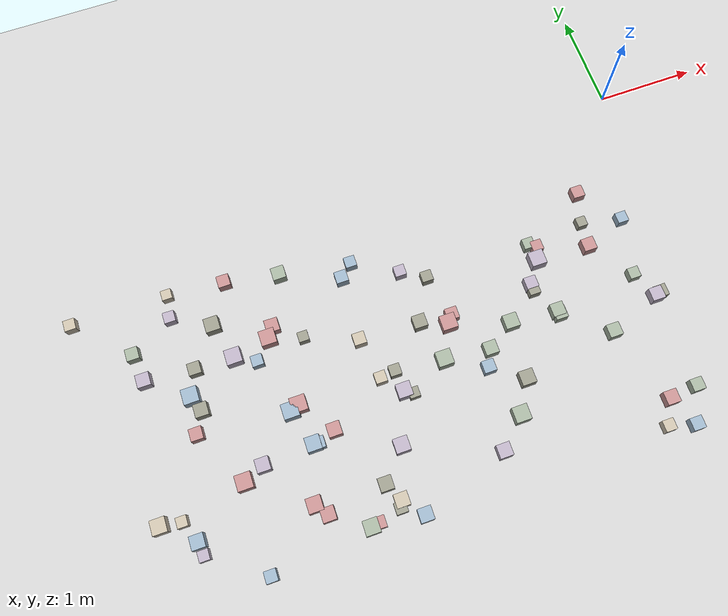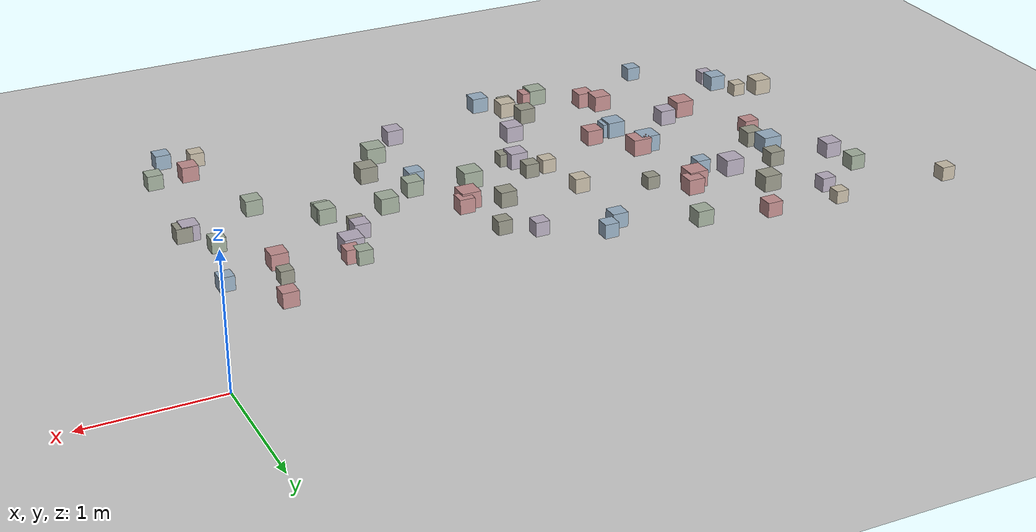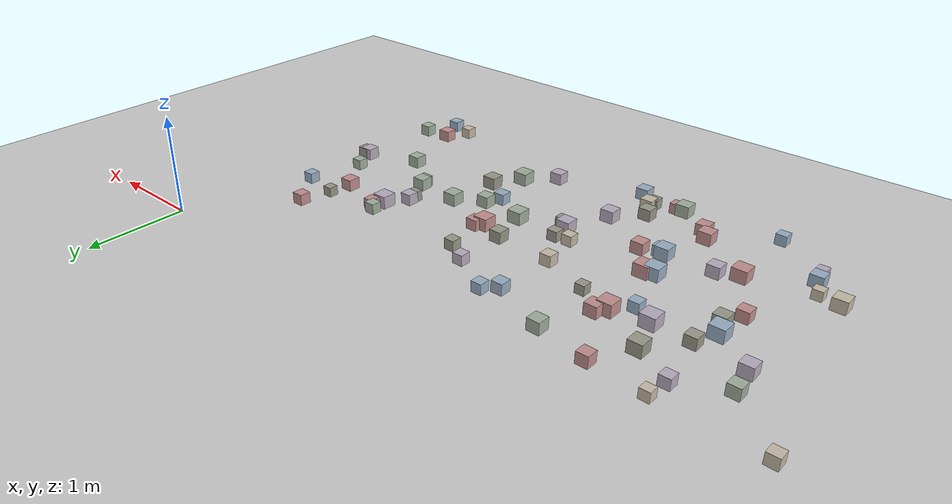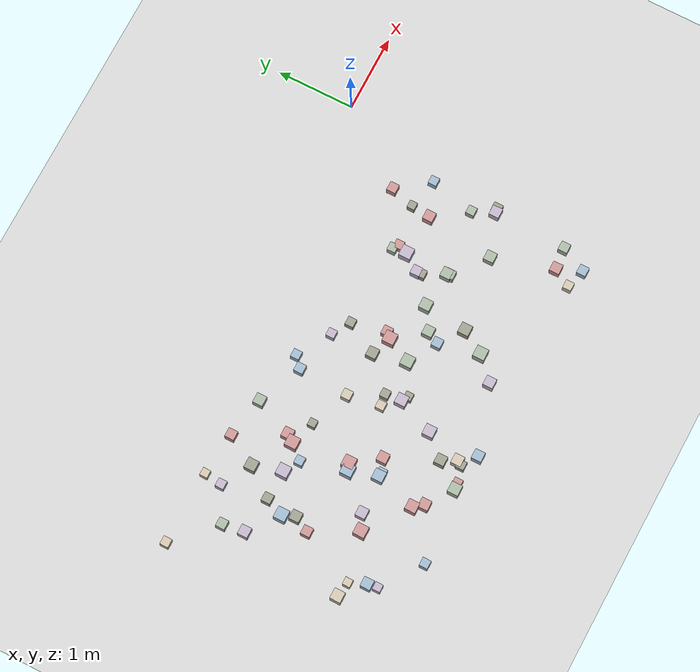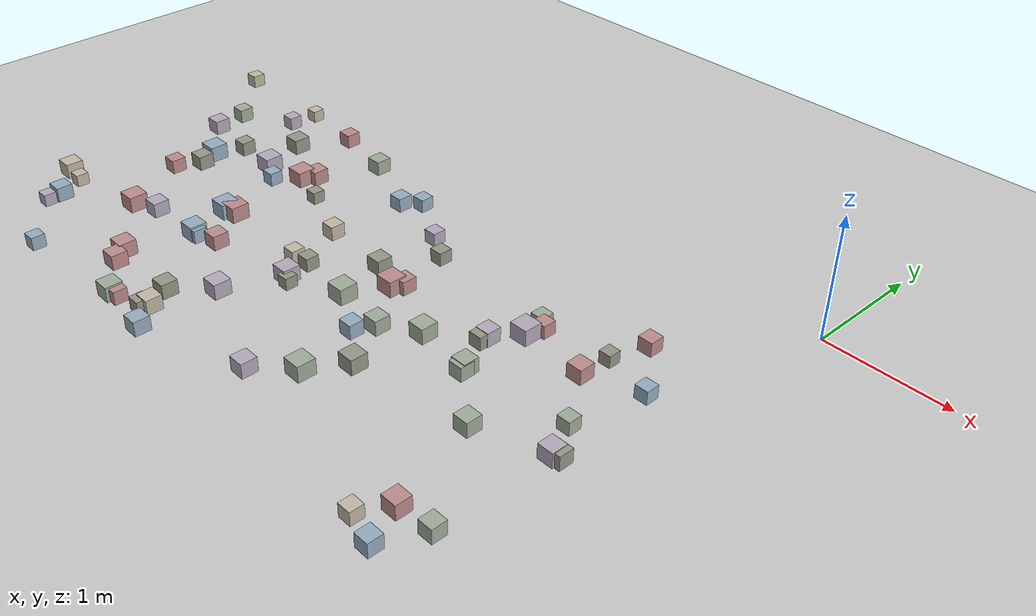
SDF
<sdf version="1.6">
 <world name="small_maze_world">
  <include><uri>model://ground_plane</uri></include>
  <include><uri>model://sun</uri></include>
  <model name="box_7">
   <static>false</static>
   <pose>-1.33 -1.35 0.05 0 0 0</pose>
   <link name="link">
    <inertial>
     <mass>0.2</mass>
     <inertia><ixx>0.001</ixx><iyy>0.001</iyy><izz>0.001</izz><ixy>0</ixy><ixz>0</ixz><iyz>0</iyz></inertia>
    </inertial>
    <collision name="collision"><geometry><box><size>0.11 0.11 0.11</size></box></geometry></collision>
    <visual name="visual">
     <geometry><box><size>0.11 0.11 0.11</size></box></geometry>
     <material><ambient>0.76 0.56 0.56 1</ambient><diffuse>0.76 0.56 0.56 1</diffuse></material>
    </visual>
   </link>
  </model>
  <model name="box_8">
   <static>false</static>
   <pose>-0.42 -2.2 0.05 0 0 0</pose>
   <link name="link">
    <inertial>
     <mass>0.2</mass>
     <inertia><ixx>0.001</ixx><iyy>0.001</iyy><izz>0.001</izz><ixy>0</ixy><ixz>0</ixz><iyz>0</iyz></inertia>
    </inertial>
    <collision name="collision"><geometry><box><size>0.13 0.13 0.13</size></box></geometry></collision>
    <visual name="visual">
     <geometry><box><size>0.13 0.13 0.13</size></box></geometry>
     <material><ambient>0.72 0.68 0.75 1</ambient><diffuse>0.72 0.68 0.75 1</diffuse></material>
    </visual>
   </link>
  </model>
  <model name="box_11">
   <static>false</static>
   <pose>-5.37 -1.1 0.05 0 0 0</pose>
   <link name="link">
    <inertial>
     <mass>0.2</mass>
     <inertia><ixx>0.001</ixx><iyy>0.001</iyy><izz>0.001</izz><ixy>0</ixy><ixz>0</ixz><iyz>0</iyz></inertia>
    </inertial>
    <collision name="collision"><geometry><box><size>0.12 0.12 0.12</size></box></geometry></collision>
    <visual name="visual">
     <geometry><box><size>0.12 0.12 0.12</size></box></geometry>
     <material><ambient>0.64 0.69 0.62 1</ambient><diffuse>0.64 0.69 0.62 1</diffuse></material>
    </visual>
   </link>
  </model>
  <model name="box_35">
   <static>false</static>
   <pose>-4.95 -0.86 0.05 0 0 0</pose>
   <link name="link">
    <inertial>
     <mass>0.2</mass>
     <inertia><ixx>0.001</ixx><iyy>0.001</iyy><izz>0.001</izz><ixy>0</ixy><ixz>0</ixz><iyz>0</iyz></inertia>
    </inertial>
    <collision name="collision"><geometry><box><size>0.11 0.11 0.11</size></box></geometry></collision>
    <visual name="visual">
     <geometry><box><size>0.11 0.11 0.11</size></box></geometry>
     <material><ambient>0.72 0.68 0.75 1</ambient><diffuse>0.72 0.68 0.75 1</diffuse></material>
    </visual>
   </link>
  </model>
  <model name="box_37">
   <static>false</static>
   <pose>-0.72 -0.95 0.05 0 0 0</pose>
   <link name="link">
    <inertial>
     <mass>0.2</mass>
     <inertia><ixx>0.001</ixx><iyy>0.001</iyy><izz>0.001</izz><ixy>0</ixy><ixz>0</ixz><iyz>0</iyz></inertia>
    </inertial>
    <collision name="collision"><geometry><box><size>0.12 0.12 0.12</size></box></geometry></collision>
    <visual name="visual">
     <geometry><box><size>0.12 0.12 0.12</size></box></geometry>
     <material><ambient>0.76 0.56 0.56 1</ambient><diffuse>0.76 0.56 0.56 1</diffuse></material>
    </visual>
   </link>
  </model>
  <model name="box_38">
   <static>false</static>
   <pose>-4.06 -3.11 0.05 0 0 0</pose>
   <link name="link">
    <inertial>
     <mass>0.2</mass>
     <inertia><ixx>0.001</ixx><iyy>0.001</iyy><izz>0.001</izz><ixy>0</ixy><ixz>0</ixz><iyz>0</iyz></inertia>
    </inertial>
    <collision name="collision"><geometry><box><size>0.13 0.13 0.13</size></box></geometry></collision>
    <visual name="visual">
     <geometry><box><size>0.13 0.13 0.13</size></box></geometry>
     <material><ambient>0.76 0.56 0.56 1</ambient><diffuse>0.76 0.56 0.56 1</diffuse></material>
    </visual>
   </link>
  </model>
  <model name="box_39">
   <static>false</static>
   <pose>-4.69 -2.59 0.05 0 0 0</pose>
   <link name="link">
    <inertial>
     <mass>0.2</mass>
     <inertia><ixx>0.001</ixx><iyy>0.001</iyy><izz>0.001</izz><ixy>0</ixy><ixz>0</ixz><iyz>0</iyz></inertia>
    </inertial>
    <collision name="collision"><geometry><box><size>0.15 0.15 0.15</size></box></geometry></collision>
    <visual name="visual">
     <geometry><box><size>0.15 0.15 0.15</size></box></geometry>
     <material><ambient>0.76 0.56 0.56 1</ambient><diffuse>0.76 0.56 0.56 1</diffuse></material>
    </visual>
   </link>
  </model>
  <model name="box_41">
   <static>false</static>
   <pose>-4.11 -1.37 0.05 0 0 0</pose>
   <link name="link">
    <inertial>
     <mass>0.2</mass>
     <inertia><ixx>0.001</ixx><iyy>0.001</iyy><izz>0.001</izz><ixy>0</ixy><ixz>0</ixz><iyz>0</iyz></inertia>
    </inertial>
    <collision name="collision"><geometry><box><size>0.15 0.15 0.15</size></box></geometry></collision>
    <visual name="visual">
     <geometry><box><size>0.15 0.15 0.15</size></box></geometry>
     <material><ambient>0.76 0.56 0.56 1</ambient><diffuse>0.76 0.56 0.56 1</diffuse></material>
    </visual>
   </link>
  </model>
  <model name="box_55">
   <static>false</static>
   <pose>-4.69 -3.44 0.05 0 0 0</pose>
   <link name="link">
    <inertial>
     <mass>0.2</mass>
     <inertia><ixx>0.001</ixx><iyy>0.001</iyy><izz>0.001</izz><ixy>0</ixy><ixz>0</ixz><iyz>0</iyz></inertia>
    </inertial>
    <collision name="collision"><geometry><box><size>0.11 0.11 0.11</size></box></geometry></collision>
    <visual name="visual">
     <geometry><box><size>0.11 0.11 0.11</size></box></geometry>
     <material><ambient>0.6 0.69 0.77 1</ambient><diffuse>0.6 0.69 0.77 1</diffuse></material>
    </visual>
   </link>
  </model>
  <model name="box_60">
   <static>false</static>
   <pose>-0.96 -2.4 0.05 0 0 0</pose>
   <link name="link">
    <inertial>
     <mass>0.2</mass>
     <inertia><ixx>0.001</ixx><iyy>0.001</iyy><izz>0.001</izz><ixy>0</ixy><ixz>0</ixz><iyz>0</iyz></inertia>
    </inertial>
    <collision name="collision"><geometry><box><size>0.13 0.13 0.13</size></box></geometry></collision>
    <visual name="visual">
     <geometry><box><size>0.13 0.13 0.13</size></box></geometry>
     <material><ambient>0.64 0.69 0.62 1</ambient><diffuse>0.64 0.69 0.62 1</diffuse></material>
    </visual>
   </link>
  </model>
  <model name="box_66">
   <static>false</static>
   <pose>-0.41 -1.35 0.05 0 0 0</pose>
   <link name="link">
    <inertial>
     <mass>0.2</mass>
     <inertia><ixx>0.001</ixx><iyy>0.001</iyy><izz>0.001</izz><ixy>0</ixy><ixz>0</ixz><iyz>0</iyz></inertia>
    </inertial>
    <collision name="collision"><geometry><box><size>0.11 0.11 0.11</size></box></geometry></collision>
    <visual name="visual">
     <geometry><box><size>0.11 0.11 0.11</size></box></geometry>
     <material><ambient>0.6 0.69 0.77 1</ambient><diffuse>0.6 0.69 0.77 1</diffuse></material>
    </visual>
   </link>
  </model>
  <model name="box_68">
   <static>false</static>
   <pose>-4.11 -2.11 0.05 0 0 0</pose>
   <link name="link">
    <inertial>
     <mass>0.2</mass>
     <inertia><ixx>0.001</ixx><iyy>0.001</iyy><izz>0.001</izz><ixy>0</ixy><ixz>0</ixz><iyz>0</iyz></inertia>
    </inertial>
    <collision name="collision"><geometry><box><size>0.15 0.15 0.15</size></box></geometry></collision>
    <visual name="visual">
     <geometry><box><size>0.15 0.15 0.15</size></box></geometry>
     <material><ambient>0.6 0.69 0.77 1</ambient><diffuse>0.6 0.69 0.77 1</diffuse></material>
    </visual>
   </link>
  </model>
  <model name="box_76">
   <static>false</static>
   <pose>-3.65 -3.33 0.05 0 0 0</pose>
   <link name="link">
    <inertial>
     <mass>0.2</mass>
     <inertia><ixx>0.001</ixx><iyy>0.001</iyy><izz>0.001</izz><ixy>0</ixy><ixz>0</ixz><iyz>0</iyz></inertia>
    </inertial>
    <collision name="collision"><geometry><box><size>0.11 0.11 0.11</size></box></geometry></collision>
    <visual name="visual">
     <geometry><box><size>0.11 0.11 0.11</size></box></geometry>
     <material><ambient>0.76 0.56 0.56 1</ambient><diffuse>0.76 0.56 0.56 1</diffuse></material>
    </visual>
   </link>
  </model>
  <model name="box_77">
   <static>false</static>
   <pose>-4.0 -2.47 0.05 0 0 0</pose>
   <link name="link">
    <inertial>
     <mass>0.2</mass>
     <inertia><ixx>0.001</ixx><iyy>0.001</iyy><izz>0.001</izz><ixy>0</ixy><ixz>0</ixz><iyz>0</iyz></inertia>
    </inertial>
    <collision name="collision"><geometry><box><size>0.14 0.14 0.14</size></box></geometry></collision>
    <visual name="visual">
     <geometry><box><size>0.14 0.14 0.14</size></box></geometry>
     <material><ambient>0.6 0.69 0.77 1</ambient><diffuse>0.6 0.69 0.77 1</diffuse></material>
    </visual>
   </link>
  </model>
  <model name="box_80">
   <static>false</static>
   <pose>-0.54 -1.93 0.05 0 0 0</pose>
   <link name="link">
    <inertial>
     <mass>0.2</mass>
     <inertia><ixx>0.001</ixx><iyy>0.001</iyy><izz>0.001</izz><ixy>0</ixy><ixz>0</ixz><iyz>0</iyz></inertia>
    </inertial>
    <collision name="collision"><geometry><box><size>0.11 0.11 0.11</size></box></geometry></collision>
    <visual name="visual">
     <geometry><box><size>0.11 0.11 0.11</size></box></geometry>
     <material><ambient>0.64 0.69 0.62 1</ambient><diffuse>0.64 0.69 0.62 1</diffuse></material>
    </visual>
   </link>
  </model>
  <model name="box_90">
   <static>false</static>
   <pose>-5.87 -0.62 0.05 0 0 0</pose>
   <link name="link">
    <inertial>
     <mass>0.2</mass>
     <inertia><ixx>0.001</ixx><iyy>0.001</iyy><izz>0.001</izz><ixy>0</ixy><ixz>0</ixz><iyz>0</iyz></inertia>
    </inertial>
    <collision name="collision"><geometry><box><size>0.11 0.11 0.11</size></box></geometry></collision>
    <visual name="visual">
     <geometry><box><size>0.11 0.11 0.11</size></box></geometry>
     <material><ambient>0.78 0.74 0.66 1</ambient><diffuse>0.78 0.74 0.66 1</diffuse></material>
    </visual>
   </link>
  </model>
  <model name="box_105">
   <static>false</static>
   <pose>-3.79 -1.47 0.05 0 0 0</pose>
   <link name="link">
    <inertial>
     <mass>0.2</mass>
     <inertia><ixx>0.001</ixx><iyy>0.001</iyy><izz>0.001</izz><ixy>0</ixy><ixz>0</ixz><iyz>0</iyz></inertia>
    </inertial>
    <collision name="collision"><geometry><box><size>0.1 0.1 0.1</size></box></geometry></collision>
    <visual name="visual">
     <geometry><box><size>0.1 0.1 0.1</size></box></geometry>
     <material><ambient>0.6 0.6 0.54 1</ambient><diffuse>0.6 0.6 0.54 1</diffuse></material>
    </visual>
   </link>
  </model>
  <model name="box_108">
   <static>false</static>
   <pose>-5.33 -1.38 0.05 0 0 0</pose>
   <link name="link">
    <inertial>
     <mass>0.2</mass>
     <inertia><ixx>0.001</ixx><iyy>0.001</iyy><izz>0.001</izz><ixy>0</ixy><ixz>0</ixz><iyz>0</iyz></inertia>
    </inertial>
    <collision name="collision"><geometry><box><size>0.13 0.13 0.13</size></box></geometry></collision>
    <visual name="visual">
     <geometry><box><size>0.13 0.13 0.13</size></box></geometry>
     <material><ambient>0.72 0.68 0.75 1</ambient><diffuse>0.72 0.68 0.75 1</diffuse></material>
    </visual>
   </link>
  </model>
  <model name="box_112">
   <static>false</static>
   <pose>-3.24 -3.4 0.05 0 0 0</pose>
   <link name="link">
    <inertial>
     <mass>0.2</mass>
     <inertia><ixx>0.001</ixx><iyy>0.001</iyy><izz>0.001</izz><ixy>0</ixy><ixz>0</ixz><iyz>0</iyz></inertia>
    </inertial>
    <collision name="collision"><geometry><box><size>0.13 0.13 0.13</size></box></geometry></collision>
    <visual name="visual">
     <geometry><box><size>0.13 0.13 0.13</size></box></geometry>
     <material><ambient>0.6 0.69 0.77 1</ambient><diffuse>0.6 0.69 0.77 1</diffuse></material>
    </visual>
   </link>
  </model>
  <model name="box_117">
   <static>false</static>
   <pose>-5.51 -2.71 0.05 0 0 0</pose>
   <link name="link">
    <inertial>
     <mass>0.2</mass>
     <inertia><ixx>0.001</ixx><iyy>0.001</iyy><izz>0.001</izz><ixy>0</ixy><ixz>0</ixz><iyz>0</iyz></inertia>
    </inertial>
    <collision name="collision"><geometry><box><size>0.14 0.14 0.14</size></box></geometry></collision>
    <visual name="visual">
     <geometry><box><size>0.14 0.14 0.14</size></box></geometry>
     <material><ambient>0.78 0.74 0.66 1</ambient><diffuse>0.78 0.74 0.66 1</diffuse></material>
    </visual>
   </link>
  </model>
  <model name="box_118">
   <static>false</static>
   <pose>-2.37 -1.73 0.05 0 0 0</pose>
   <link name="link">
    <inertial>
     <mass>0.2</mass>
     <inertia><ixx>0.001</ixx><iyy>0.001</iyy><izz>0.001</izz><ixy>0</ixy><ixz>0</ixz><iyz>0</iyz></inertia>
    </inertial>
    <collision name="collision"><geometry><box><size>0.12 0.12 0.12</size></box></geometry></collision>
    <visual name="visual">
     <geometry><box><size>0.12 0.12 0.12</size></box></geometry>
     <material><ambient>0.76 0.56 0.56 1</ambient><diffuse>0.76 0.56 0.56 1</diffuse></material>
    </visual>
   </link>
  </model>
  <model name="box_124">
   <static>false</static>
   <pose>-2.97 -2.33 0.05 0 0 0</pose>
   <link name="link">
    <inertial>
     <mass>0.2</mass>
     <inertia><ixx>0.001</ixx><iyy>0.001</iyy><izz>0.001</izz><ixy>0</ixy><ixz>0</ixz><iyz>0</iyz></inertia>
    </inertial>
    <collision name="collision"><geometry><box><size>0.1 0.1 0.1</size></box></geometry></collision>
    <visual name="visual">
     <geometry><box><size>0.1 0.1 0.1</size></box></geometry>
     <material><ambient>0.6 0.6 0.54 1</ambient><diffuse>0.6 0.6 0.54 1</diffuse></material>
    </visual>
   </link>
  </model>
  <model name="box_138">
   <static>false</static>
   <pose>-4.02 -2.08 0.05 0 0 0</pose>
   <link name="link">
    <inertial>
     <mass>0.2</mass>
     <inertia><ixx>0.001</ixx><iyy>0.001</iyy><izz>0.001</izz><ixy>0</ixy><ixz>0</ixz><iyz>0</iyz></inertia>
    </inertial>
    <collision name="collision"><geometry><box><size>0.15 0.15 0.15</size></box></geometry></collision>
    <visual name="visual">
     <geometry><box><size>0.15 0.15 0.15</size></box></geometry>
     <material><ambient>0.76 0.56 0.56 1</ambient><diffuse>0.76 0.56 0.56 1</diffuse></material>
    </visual>
   </link>
  </model>
  <model name="box_144">
   <static>false</static>
   <pose>-4.92 -0.63 0.05 0 0 0</pose>
   <link name="link">
    <inertial>
     <mass>0.2</mass>
     <inertia><ixx>0.001</ixx><iyy>0.001</iyy><izz>0.001</izz><ixy>0</ixy><ixz>0</ixz><iyz>0</iyz></inertia>
    </inertial>
    <collision name="collision"><geometry><box><size>0.1 0.1 0.1</size></box></geometry></collision>
    <visual name="visual">
     <geometry><box><size>0.1 0.1 0.1</size></box></geometry>
     <material><ambient>0.78 0.74 0.66 1</ambient><diffuse>0.78 0.74 0.66 1</diffuse></material>
    </visual>
   </link>
  </model>
  <model name="box_148">
   <static>false</static>
   <pose>-0.6 -3.47 0.05 0 0 0</pose>
   <link name="link">
    <inertial>
     <mass>0.2</mass>
     <inertia><ixx>0.001</ixx><iyy>0.001</iyy><izz>0.001</izz><ixy>0</ixy><ixz>0</ixz><iyz>0</iyz></inertia>
    </inertial>
    <collision name="collision"><geometry><box><size>0.12 0.12 0.12</size></box></geometry></collision>
    <visual name="visual">
     <geometry><box><size>0.12 0.12 0.12</size></box></geometry>
     <material><ambient>0.6 0.69 0.77 1</ambient><diffuse>0.6 0.69 0.77 1</diffuse></material>
    </visual>
   </link>
  </model>
  <model name="box_154">
   <static>false</static>
   <pose>-2.43 -1.8 0.05 0 0 0</pose>
   <link name="link">
    <inertial>
     <mass>0.2</mass>
     <inertia><ixx>0.001</ixx><iyy>0.001</iyy><izz>0.001</izz><ixy>0</ixy><ixz>0</ixz><iyz>0</iyz></inertia>
    </inertial>
    <collision name="collision"><geometry><box><size>0.15 0.15 0.15</size></box></geometry></collision>
    <visual name="visual">
     <geometry><box><size>0.15 0.15 0.15</size></box></geometry>
     <material><ambient>0.76 0.56 0.56 1</ambient><diffuse>0.76 0.56 0.56 1</diffuse></material>
    </visual>
   </link>
  </model>
  <model name="box_159">
   <static>false</static>
   <pose>-0.85 -3.4 0.05 0 0 0</pose>
   <link name="link">
    <inertial>
     <mass>0.2</mass>
     <inertia><ixx>0.001</ixx><iyy>0.001</iyy><izz>0.001</izz><ixy>0</ixy><ixz>0</ixz><iyz>0</iyz></inertia>
    </inertial>
    <collision name="collision"><geometry><box><size>0.11 0.11 0.11</size></box></geometry></collision>
    <visual name="visual">
     <geometry><box><size>0.11 0.11 0.11</size></box></geometry>
     <material><ambient>0.78 0.74 0.66 1</ambient><diffuse>0.78 0.74 0.66 1</diffuse></material>
    </visual>
   </link>
  </model>
  <model name="box_160">
   <static>false</static>
   <pose>-4.58 -1.07 0.05 0 0 0</pose>
   <link name="link">
    <inertial>
     <mass>0.2</mass>
     <inertia><ixx>0.001</ixx><iyy>0.001</iyy><izz>0.001</izz><ixy>0</ixy><ixz>0</ixz><iyz>0</iyz></inertia>
    </inertial>
    <collision name="collision"><geometry><box><size>0.14 0.14 0.14</size></box></geometry></collision>
    <visual name="visual">
     <geometry><box><size>0.14 0.14 0.14</size></box></geometry>
     <material><ambient>0.6 0.6 0.54 1</ambient><diffuse>0.6 0.6 0.54 1</diffuse></material>
    </visual>
   </link>
  </model>
  <model name="box_162">
   <static>false</static>
   <pose>-2.47 -1.29 0.05 0 0 0</pose>
   <link name="link">
    <inertial>
     <mass>0.2</mass>
     <inertia><ixx>0.001</ixx><iyy>0.001</iyy><izz>0.001</izz><ixy>0</ixy><ixz>0</ixz><iyz>0</iyz></inertia>
    </inertial>
    <collision name="collision"><geometry><box><size>0.11 0.11 0.11</size></box></geometry></collision>
    <visual name="visual">
     <geometry><box><size>0.11 0.11 0.11</size></box></geometry>
     <material><ambient>0.6 0.6 0.54 1</ambient><diffuse>0.6 0.6 0.54 1</diffuse></material>
    </visual>
   </link>
  </model>
  <model name="box_167">
   <static>false</static>
   <pose>-1.92 -2.55 0.05 0 0 0</pose>
   <link name="link">
    <inertial>
     <mass>0.2</mass>
     <inertia><ixx>0.001</ixx><iyy>0.001</iyy><izz>0.001</izz><ixy>0</ixy><ixz>0</ixz><iyz>0</iyz></inertia>
    </inertial>
    <collision name="collision"><geometry><box><size>0.14 0.14 0.14</size></box></geometry></collision>
    <visual name="visual">
     <geometry><box><size>0.14 0.14 0.14</size></box></geometry>
     <material><ambient>0.6 0.6 0.54 1</ambient><diffuse>0.6 0.6 0.54 1</diffuse></material>
    </visual>
   </link>
  </model>
  <model name="box_168">
   <static>false</static>
   <pose>-1.4 -1.3 0.05 0 0 0</pose>
   <link name="link">
    <inertial>
     <mass>0.2</mass>
     <inertia><ixx>0.001</ixx><iyy>0.001</iyy><izz>0.001</izz><ixy>0</ixy><ixz>0</ixz><iyz>0</iyz></inertia>
    </inertial>
    <collision name="collision"><geometry><box><size>0.11 0.11 0.11</size></box></geometry></collision>
    <visual name="visual">
     <geometry><box><size>0.11 0.11 0.11</size></box></geometry>
     <material><ambient>0.64 0.69 0.62 1</ambient><diffuse>0.64 0.69 0.62 1</diffuse></material>
    </visual>
   </link>
  </model>
  <model name="box_175">
   <static>false</static>
   <pose>-2.37 -3.11 0.05 0 0 0</pose>
   <link name="link">
    <inertial>
     <mass>0.2</mass>
     <inertia><ixx>0.001</ixx><iyy>0.001</iyy><izz>0.001</izz><ixy>0</ixy><ixz>0</ixz><iyz>0</iyz></inertia>
    </inertial>
    <collision name="collision"><geometry><box><size>0.13 0.13 0.13</size></box></geometry></collision>
    <visual name="visual">
     <geometry><box><size>0.13 0.13 0.13</size></box></geometry>
     <material><ambient>0.72 0.68 0.75 1</ambient><diffuse>0.72 0.68 0.75 1</diffuse></material>
    </visual>
   </link>
  </model>
  <model name="box_176">
   <static>false</static>
   <pose>-3.78 -2.41 0.05 0 0 0</pose>
   <link name="link">
    <inertial>
     <mass>0.2</mass>
     <inertia><ixx>0.001</ixx><iyy>0.001</iyy><izz>0.001</izz><ixy>0</ixy><ixz>0</ixz><iyz>0</iyz></inertia>
    </inertial>
    <collision name="collision"><geometry><box><size>0.13 0.13 0.13</size></box></geometry></collision>
    <visual name="visual">
     <geometry><box><size>0.13 0.13 0.13</size></box></geometry>
     <material><ambient>0.76 0.56 0.56 1</ambient><diffuse>0.76 0.56 0.56 1</diffuse></material>
    </visual>
   </link>
  </model>
  <model name="box_181">
   <static>false</static>
   <pose>-0.81 -1.26 0.05 0 0 0</pose>
   <link name="link">
    <inertial>
     <mass>0.2</mass>
     <inertia><ixx>0.001</ixx><iyy>0.001</iyy><izz>0.001</izz><ixy>0</ixy><ixz>0</ixz><iyz>0</iyz></inertia>
    </inertial>
    <collision name="collision"><geometry><box><size>0.1 0.1 0.1</size></box></geometry></collision>
    <visual name="visual">
     <geometry><box><size>0.1 0.1 0.1</size></box></geometry>
     <material><ambient>0.6 0.6 0.54 1</ambient><diffuse>0.6 0.6 0.54 1</diffuse></material>
    </visual>
   </link>
  </model>
  <model name="box_193">
   <static>false</static>
   <pose>-0.37 -2.19 0.05 0 0 0</pose>
   <link name="link">
    <inertial>
     <mass>0.2</mass>
     <inertia><ixx>0.001</ixx><iyy>0.001</iyy><izz>0.001</izz><ixy>0</ixy><ixz>0</ixz><iyz>0</iyz></inertia>
    </inertial>
    <collision name="collision"><geometry><box><size>0.12 0.12 0.12</size></box></geometry></collision>
    <visual name="visual">
     <geometry><box><size>0.12 0.12 0.12</size></box></geometry>
     <material><ambient>0.6 0.6 0.54 1</ambient><diffuse>0.6 0.6 0.54 1</diffuse></material>
    </visual>
   </link>
  </model>
  <model name="box_196">
   <static>false</static>
   <pose>-4.95 -1.67 0.05 0 0 0</pose>
   <link name="link">
    <inertial>
     <mass>0.2</mass>
     <inertia><ixx>0.001</ixx><iyy>0.001</iyy><izz>0.001</izz><ixy>0</ixy><ixz>0</ixz><iyz>0</iyz></inertia>
    </inertial>
    <collision name="collision"><geometry><box><size>0.15 0.15 0.15</size></box></geometry></collision>
    <visual name="visual">
     <geometry><box><size>0.15 0.15 0.15</size></box></geometry>
     <material><ambient>0.6 0.69 0.77 1</ambient><diffuse>0.6 0.69 0.77 1</diffuse></material>
    </visual>
   </link>
  </model>
  <model name="box_202">
   <static>false</static>
   <pose>-4.36 -0.68 0.05 0 0 0</pose>
   <link name="link">
    <inertial>
     <mass>0.2</mass>
     <inertia><ixx>0.001</ixx><iyy>0.001</iyy><izz>0.001</izz><ixy>0</ixy><ixz>0</ixz><iyz>0</iyz></inertia>
    </inertial>
    <collision name="collision"><geometry><box><size>0.12 0.12 0.12</size></box></geometry></collision>
    <visual name="visual">
     <geometry><box><size>0.12 0.12 0.12</size></box></geometry>
     <material><ambient>0.76 0.56 0.56 1</ambient><diffuse>0.76 0.56 0.56 1</diffuse></material>
    </visual>
   </link>
  </model>
  <model name="box_216">
   <static>false</static>
   <pose>-3.07 -2.07 0.05 0 0 0</pose>
   <link name="link">
    <inertial>
     <mass>0.2</mass>
     <inertia><ixx>0.001</ixx><iyy>0.001</iyy><izz>0.001</izz><ixy>0</ixy><ixz>0</ixz><iyz>0</iyz></inertia>
    </inertial>
    <collision name="collision"><geometry><box><size>0.11 0.11 0.11</size></box></geometry></collision>
    <visual name="visual">
     <geometry><box><size>0.11 0.11 0.11</size></box></geometry>
     <material><ambient>0.6 0.6 0.54 1</ambient><diffuse>0.6 0.6 0.54 1</diffuse></material>
    </visual>
   </link>
  </model>
  <model name="box_223">
   <static>false</static>
   <pose>-3.26 -1.02 0.05 0 0 0</pose>
   <link name="link">
    <inertial>
     <mass>0.2</mass>
     <inertia><ixx>0.001</ixx><iyy>0.001</iyy><izz>0.001</izz><ixy>0</ixy><ixz>0</ixz><iyz>0</iyz></inertia>
    </inertial>
    <collision name="collision"><geometry><box><size>0.12 0.12 0.12</size></box></geometry></collision>
    <visual name="visual">
     <geometry><box><size>0.12 0.12 0.12</size></box></geometry>
     <material><ambient>0.6 0.69 0.77 1</ambient><diffuse>0.6 0.69 0.77 1</diffuse></material>
    </visual>
   </link>
  </model>
  <model name="box_226">
   <static>false</static>
   <pose>-1.38 -2.07 0.05 0 0 0</pose>
   <link name="link">
    <inertial>
     <mass>0.2</mass>
     <inertia><ixx>0.001</ixx><iyy>0.001</iyy><izz>0.001</izz><ixy>0</ixy><ixz>0</ixz><iyz>0</iyz></inertia>
    </inertial>
    <collision name="collision"><geometry><box><size>0.12 0.12 0.12</size></box></geometry></collision>
    <visual name="visual">
     <geometry><box><size>0.12 0.12 0.12</size></box></geometry>
     <material><ambient>0.64 0.69 0.62 1</ambient><diffuse>0.64 0.69 0.62 1</diffuse></material>
    </visual>
   </link>
  </model>
  <model name="box_237">
   <static>false</static>
   <pose>-4.27 -1.55 0.05 0 0 0</pose>
   <link name="link">
    <inertial>
     <mass>0.2</mass>
     <inertia><ixx>0.001</ixx><iyy>0.001</iyy><izz>0.001</izz><ixy>0</ixy><ixz>0</ixz><iyz>0</iyz></inertia>
    </inertial>
    <collision name="collision"><geometry><box><size>0.11 0.11 0.11</size></box></geometry></collision>
    <visual name="visual">
     <geometry><box><size>0.11 0.11 0.11</size></box></geometry>
     <material><ambient>0.6 0.69 0.77 1</ambient><diffuse>0.6 0.69 0.77 1</diffuse></material>
    </visual>
   </link>
  </model>
  <model name="box_240">
   <static>false</static>
   <pose>-3.24 -2.75 0.05 0 0 0</pose>
   <link name="link">
    <inertial>
     <mass>0.2</mass>
     <inertia><ixx>0.001</ixx><iyy>0.001</iyy><izz>0.001</izz><ixy>0</ixy><ixz>0</ixz><iyz>0</iyz></inertia>
    </inertial>
    <collision name="collision"><geometry><box><size>0.14 0.14 0.14</size></box></geometry></collision>
    <visual name="visual">
     <geometry><box><size>0.14 0.14 0.14</size></box></geometry>
     <material><ambient>0.72 0.68 0.75 1</ambient><diffuse>0.72 0.68 0.75 1</diffuse></material>
    </visual>
   </link>
  </model>
  <model name="box_245">
   <static>false</static>
   <pose>-3.4 -3.21 0.05 0 0 0</pose>
   <link name="link">
    <inertial>
     <mass>0.2</mass>
     <inertia><ixx>0.001</ixx><iyy>0.001</iyy><izz>0.001</izz><ixy>0</ixy><ixz>0</ixz><iyz>0</iyz></inertia>
    </inertial>
    <collision name="collision"><geometry><box><size>0.13 0.13 0.13</size></box></geometry></collision>
    <visual name="visual">
     <geometry><box><size>0.13 0.13 0.13</size></box></geometry>
     <material><ambient>0.78 0.74 0.66 1</ambient><diffuse>0.78 0.74 0.66 1</diffuse></material>
    </visual>
   </link>
  </model>
  <model name="box_250">
   <static>false</static>
   <pose>-3.83 -0.78 0.05 0 0 0</pose>
   <link name="link">
    <inertial>
     <mass>0.2</mass>
     <inertia><ixx>0.001</ixx><iyy>0.001</iyy><izz>0.001</izz><ixy>0</ixy><ixz>0</ixz><iyz>0</iyz></inertia>
    </inertial>
    <collision name="collision"><geometry><box><size>0.13 0.13 0.13</size></box></geometry></collision>
    <visual name="visual">
     <geometry><box><size>0.13 0.13 0.13</size></box></geometry>
     <material><ambient>0.64 0.69 0.62 1</ambient><diffuse>0.64 0.69 0.62 1</diffuse></material>
    </visual>
   </link>
  </model>
  <model name="box_254">
   <static>false</static>
   <pose>-2.59 -2.12 0.05 0 0 0</pose>
   <link name="link">
    <inertial>
     <mass>0.2</mass>
     <inertia><ixx>0.001</ixx><iyy>0.001</iyy><izz>0.001</izz><ixy>0</ixy><ixz>0</ixz><iyz>0</iyz></inertia>
    </inertial>
    <collision name="collision"><geometry><box><size>0.15 0.15 0.15</size></box></geometry></collision>
    <visual name="visual">
     <geometry><box><size>0.15 0.15 0.15</size></box></geometry>
     <material><ambient>0.64 0.69 0.62 1</ambient><diffuse>0.64 0.69 0.62 1</diffuse></material>
    </visual>
   </link>
  </model>
  <model name="box_261">
   <static>false</static>
   <pose>-4.47 -1.44 0.05 0 0 0</pose>
   <link name="link">
    <inertial>
     <mass>0.2</mass>
     <inertia><ixx>0.001</ixx><iyy>0.001</iyy><izz>0.001</izz><ixy>0</ixy><ixz>0</ixz><iyz>0</iyz></inertia>
    </inertial>
    <collision name="collision"><geometry><box><size>0.15 0.15 0.15</size></box></geometry></collision>
    <visual name="visual">
     <geometry><box><size>0.15 0.15 0.15</size></box></geometry>
     <material><ambient>0.72 0.68 0.75 1</ambient><diffuse>0.72 0.68 0.75 1</diffuse></material>
    </visual>
   </link>
  </model>
  <model name="box_274">
   <static>false</static>
   <pose>-0.44 -3.14 0.05 0 0 0</pose>
   <link name="link">
    <inertial>
     <mass>0.2</mass>
     <inertia><ixx>0.001</ixx><iyy>0.001</iyy><izz>0.001</izz><ixy>0</ixy><ixz>0</ixz><iyz>0</iyz></inertia>
    </inertial>
    <collision name="collision"><geometry><box><size>0.12 0.12 0.12</size></box></geometry></collision>
    <visual name="visual">
     <geometry><box><size>0.12 0.12 0.12</size></box></geometry>
     <material><ambient>0.64 0.69 0.62 1</ambient><diffuse>0.64 0.69 0.62 1</diffuse></material>
    </visual>
   </link>
  </model>
  <model name="box_280">
   <static>false</static>
   <pose>-2.22 -2.33 0.05 0 0 0</pose>
   <link name="link">
    <inertial>
     <mass>0.2</mass>
     <inertia><ixx>0.001</ixx><iyy>0.001</iyy><izz>0.001</izz><ixy>0</ixy><ixz>0</ixz><iyz>0</iyz></inertia>
    </inertial>
    <collision name="collision"><geometry><box><size>0.12 0.12 0.12</size></box></geometry></collision>
    <visual name="visual">
     <geometry><box><size>0.12 0.12 0.12</size></box></geometry>
     <material><ambient>0.6 0.69 0.77 1</ambient><diffuse>0.6 0.69 0.77 1</diffuse></material>
    </visual>
   </link>
  </model>
  <model name="box_289">
   <static>false</static>
   <pose>-3.13 -0.9 0.05 0 0 0</pose>
   <link name="link">
    <inertial>
     <mass>0.2</mass>
     <inertia><ixx>0.001</ixx><iyy>0.001</iyy><izz>0.001</izz><ixy>0</ixy><ixz>0</ixz><iyz>0</iyz></inertia>
    </inertial>
    <collision name="collision"><geometry><box><size>0.11 0.11 0.11</size></box></geometry></collision>
    <visual name="visual">
     <geometry><box><size>0.11 0.11 0.11</size></box></geometry>
     <material><ambient>0.6 0.69 0.77 1</ambient><diffuse>0.6 0.69 0.77 1</diffuse></material>
    </visual>
   </link>
  </model>
  <model name="box_292">
   <static>false</static>
   <pose>-4.89 -1.83 0.05 0 0 0</pose>
   <link name="link">
    <inertial>
     <mass>0.2</mass>
     <inertia><ixx>0.001</ixx><iyy>0.001</iyy><izz>0.001</izz><ixy>0</ixy><ixz>0</ixz><iyz>0</iyz></inertia>
    </inertial>
    <collision name="collision"><geometry><box><size>0.13 0.13 0.13</size></box></geometry></collision>
    <visual name="visual">
     <geometry><box><size>0.13 0.13 0.13</size></box></geometry>
     <material><ambient>0.6 0.6 0.54 1</ambient><diffuse>0.6 0.6 0.54 1</diffuse></material>
    </visual>
   </link>
  </model>
  <model name="box_301">
   <static>false</static>
   <pose>-2.7 -1.15 0.05 0 0 0</pose>
   <link name="link">
    <inertial>
     <mass>0.2</mass>
     <inertia><ixx>0.001</ixx><iyy>0.001</iyy><izz>0.001</izz><ixy>0</ixy><ixz>0</ixz><iyz>0</iyz></inertia>
    </inertial>
    <collision name="collision"><geometry><box><size>0.11 0.11 0.11</size></box></geometry></collision>
    <visual name="visual">
     <geometry><box><size>0.11 0.11 0.11</size></box></geometry>
     <material><ambient>0.72 0.68 0.75 1</ambient><diffuse>0.72 0.68 0.75 1</diffuse></material>
    </visual>
   </link>
  </model>
  <model name="box_303">
   <static>false</static>
   <pose>-1.53 -1.76 0.05 0 0 0</pose>
   <link name="link">
    <inertial>
     <mass>0.2</mass>
     <inertia><ixx>0.001</ixx><iyy>0.001</iyy><izz>0.001</izz><ixy>0</ixy><ixz>0</ixz><iyz>0</iyz></inertia>
    </inertial>
    <collision name="collision"><geometry><box><size>0.11 0.11 0.11</size></box></geometry></collision>
    <visual name="visual">
     <geometry><box><size>0.11 0.11 0.11</size></box></geometry>
     <material><ambient>0.6 0.6 0.54 1</ambient><diffuse>0.6 0.6 0.54 1</diffuse></material>
    </visual>
   </link>
  </model>
  <model name="box_314">
   <static>false</static>
   <pose>-1.39 -2.03 0.05 0 0 0</pose>
   <link name="link">
    <inertial>
     <mass>0.2</mass>
     <inertia><ixx>0.001</ixx><iyy>0.001</iyy><izz>0.001</izz><ixy>0</ixy><ixz>0</ixz><iyz>0</iyz></inertia>
    </inertial>
    <collision name="collision"><geometry><box><size>0.13 0.13 0.13</size></box></geometry></collision>
    <visual name="visual">
     <geometry><box><size>0.13 0.13 0.13</size></box></geometry>
     <material><ambient>0.64 0.69 0.62 1</ambient><diffuse>0.64 0.69 0.62 1</diffuse></material>
    </visual>
   </link>
  </model>
  <model name="box_318">
   <static>false</static>
   <pose>-4.15 -2.99 0.05 0 0 0</pose>
   <link name="link">
    <inertial>
     <mass>0.2</mass>
     <inertia><ixx>0.001</ixx><iyy>0.001</iyy><izz>0.001</izz><ixy>0</ixy><ixz>0</ixz><iyz>0</iyz></inertia>
    </inertial>
    <collision name="collision"><geometry><box><size>0.14 0.14 0.14</size></box></geometry></collision>
    <visual name="visual">
     <geometry><box><size>0.14 0.14 0.14</size></box></geometry>
     <material><ambient>0.76 0.56 0.56 1</ambient><diffuse>0.76 0.56 0.56 1</diffuse></material>
    </visual>
   </link>
  </model>
  <model name="box_321">
   <static>false</static>
   <pose>-4.99 -2.03 0.05 0 0 0</pose>
   <link name="link">
    <inertial>
     <mass>0.2</mass>
     <inertia><ixx>0.001</ixx><iyy>0.001</iyy><izz>0.001</izz><ixy>0</ixy><ixz>0</ixz><iyz>0</iyz></inertia>
    </inertial>
    <collision name="collision"><geometry><box><size>0.12 0.12 0.12</size></box></geometry></collision>
    <visual name="visual">
     <geometry><box><size>0.12 0.12 0.12</size></box></geometry>
     <material><ambient>0.76 0.56 0.56 1</ambient><diffuse>0.76 0.56 0.56 1</diffuse></material>
    </visual>
   </link>
  </model>
  <model name="box_337">
   <static>false</static>
   <pose>-2.14 -2.17 0.05 0 0 0</pose>
   <link name="link">
    <inertial>
     <mass>0.2</mass>
     <inertia><ixx>0.001</ixx><iyy>0.001</iyy><izz>0.001</izz><ixy>0</ixy><ixz>0</ixz><iyz>0</iyz></inertia>
    </inertial>
    <collision name="collision"><geometry><box><size>0.13 0.13 0.13</size></box></geometry></collision>
    <visual name="visual">
     <geometry><box><size>0.13 0.13 0.13</size></box></geometry>
     <material><ambient>0.64 0.69 0.62 1</ambient><diffuse>0.64 0.69 0.62 1</diffuse></material>
    </visual>
   </link>
  </model>
  <model name="box_343">
   <static>false</static>
   <pose>-3.43 -3.27 0.05 0 0 0</pose>
   <link name="link">
    <inertial>
     <mass>0.2</mass>
     <inertia><ixx>0.001</ixx><iyy>0.001</iyy><izz>0.001</izz><ixy>0</ixy><ixz>0</ixz><iyz>0</iyz></inertia>
    </inertial>
    <collision name="collision"><geometry><box><size>0.11 0.11 0.11</size></box></geometry></collision>
    <visual name="visual">
     <geometry><box><size>0.11 0.11 0.11</size></box></geometry>
     <material><ambient>0.6 0.6 0.54 1</ambient><diffuse>0.6 0.6 0.54 1</diffuse></material>
    </visual>
   </link>
  </model>
  <model name="box_346">
   <static>false</static>
   <pose>-3.22 -2.09 0.05 0 0 0</pose>
   <link name="link">
    <inertial>
     <mass>0.2</mass>
     <inertia><ixx>0.001</ixx><iyy>0.001</iyy><izz>0.001</izz><ixy>0</ixy><ixz>0</ixz><iyz>0</iyz></inertia>
    </inertial>
    <collision name="collision"><geometry><box><size>0.11 0.11 0.11</size></box></geometry></collision>
    <visual name="visual">
     <geometry><box><size>0.11 0.11 0.11</size></box></geometry>
     <material><ambient>0.78 0.74 0.66 1</ambient><diffuse>0.78 0.74 0.66 1</diffuse></material>
    </visual>
   </link>
  </model>
  <model name="box_350">
   <static>false</static>
   <pose>-2.69 -1.7 0.05 0 0 0</pose>
   <link name="link">
    <inertial>
     <mass>0.2</mass>
     <inertia><ixx>0.001</ixx><iyy>0.001</iyy><izz>0.001</izz><ixy>0</ixy><ixz>0</ixz><iyz>0</iyz></inertia>
    </inertial>
    <collision name="collision"><geometry><box><size>0.13 0.13 0.13</size></box></geometry></collision>
    <visual name="visual">
     <geometry><box><size>0.13 0.13 0.13</size></box></geometry>
     <material><ambient>0.6 0.6 0.54 1</ambient><diffuse>0.6 0.6 0.54 1</diffuse></material>
    </visual>
   </link>
  </model>
  <model name="box_361">
   <static>false</static>
   <pose>-1.53 -1.69 0.05 0 0 0</pose>
   <link name="link">
    <inertial>
     <mass>0.2</mass>
     <inertia><ixx>0.001</ixx><iyy>0.001</iyy><izz>0.001</izz><ixy>0</ixy><ixz>0</ixz><iyz>0</iyz></inertia>
    </inertial>
    <collision name="collision"><geometry><box><size>0.12 0.12 0.12</size></box></geometry></collision>
    <visual name="visual">
     <geometry><box><size>0.12 0.12 0.12</size></box></geometry>
     <material><ambient>0.72 0.68 0.75 1</ambient><diffuse>0.72 0.68 0.75 1</diffuse></material>
    </visual>
   </link>
  </model>
  <model name="box_362">
   <static>false</static>
   <pose>-2.1 -2.85 0.05 0 0 0</pose>
   <link name="link">
    <inertial>
     <mass>0.2</mass>
     <inertia><ixx>0.001</ixx><iyy>0.001</iyy><izz>0.001</izz><ixy>0</ixy><ixz>0</ixz><iyz>0</iyz></inertia>
    </inertial>
    <collision name="collision"><geometry><box><size>0.15 0.15 0.15</size></box></geometry></collision>
    <visual name="visual">
     <geometry><box><size>0.15 0.15 0.15</size></box></geometry>
     <material><ambient>0.64 0.69 0.62 1</ambient><diffuse>0.64 0.69 0.62 1</diffuse></material>
    </visual>
   </link>
  </model>
  <model name="box_366">
   <static>false</static>
   <pose>-1.86 -1.99 0.05 0 0 0</pose>
   <link name="link">
    <inertial>
     <mass>0.2</mass>
     <inertia><ixx>0.001</ixx><iyy>0.001</iyy><izz>0.001</izz><ixy>0</ixy><ixz>0</ixz><iyz>0</iyz></inertia>
    </inertial>
    <collision name="collision"><geometry><box><size>0.14 0.14 0.14</size></box></geometry></collision>
    <visual name="visual">
     <geometry><box><size>0.14 0.14 0.14</size></box></geometry>
     <material><ambient>0.64 0.69 0.62 1</ambient><diffuse>0.64 0.69 0.62 1</diffuse></material>
    </visual>
   </link>
  </model>
  <model name="box_369">
   <static>false</static>
   <pose>-3.29 -1.67 0.05 0 0 0</pose>
   <link name="link">
    <inertial>
     <mass>0.2</mass>
     <inertia><ixx>0.001</ixx><iyy>0.001</iyy><izz>0.001</izz><ixy>0</ixy><ixz>0</ixz><iyz>0</iyz></inertia>
    </inertial>
    <collision name="collision"><geometry><box><size>0.12 0.12 0.12</size></box></geometry></collision>
    <visual name="visual">
     <geometry><box><size>0.12 0.12 0.12</size></box></geometry>
     <material><ambient>0.78 0.74 0.66 1</ambient><diffuse>0.78 0.74 0.66 1</diffuse></material>
    </visual>
   </link>
  </model>
  <model name="box_372">
   <static>false</static>
   <pose>-0.72 -3.17 0.05 0 0 0</pose>
   <link name="link">
    <inertial>
     <mass>0.2</mass>
     <inertia><ixx>0.001</ixx><iyy>0.001</iyy><izz>0.001</izz><ixy>0</ixy><ixz>0</ixz><iyz>0</iyz></inertia>
    </inertial>
    <collision name="collision"><geometry><box><size>0.13 0.13 0.13</size></box></geometry></collision>
    <visual name="visual">
     <geometry><box><size>0.13 0.13 0.13</size></box></geometry>
     <material><ambient>0.76 0.56 0.56 1</ambient><diffuse>0.76 0.56 0.56 1</diffuse></material>
    </visual>
   </link>
  </model>
  <model name="box_373">
   <static>false</static>
   <pose>-3.95 -2.48 0.05 0 0 0</pose>
   <link name="link">
    <inertial>
     <mass>0.2</mass>
     <inertia><ixx>0.001</ixx><iyy>0.001</iyy><izz>0.001</izz><ixy>0</ixy><ixz>0</ixz><iyz>0</iyz></inertia>
    </inertial>
    <collision name="collision"><geometry><box><size>0.11 0.11 0.11</size></box></geometry></collision>
    <visual name="visual">
     <geometry><box><size>0.11 0.11 0.11</size></box></geometry>
     <material><ambient>0.6 0.69 0.77 1</ambient><diffuse>0.6 0.69 0.77 1</diffuse></material>
    </visual>
   </link>
  </model>
  <model name="box_384">
   <static>false</static>
   <pose>-4.85 -1.43 0.05 0 0 0</pose>
   <link name="link">
    <inertial>
     <mass>0.2</mass>
     <inertia><ixx>0.001</ixx><iyy>0.001</iyy><izz>0.001</izz><ixy>0</ixy><ixz>0</ixz><iyz>0</iyz></inertia>
    </inertial>
    <collision name="collision"><geometry><box><size>0.12 0.12 0.12</size></box></geometry></collision>
    <visual name="visual">
     <geometry><box><size>0.12 0.12 0.12</size></box></geometry>
     <material><ambient>0.6 0.6 0.54 1</ambient><diffuse>0.6 0.6 0.54 1</diffuse></material>
    </visual>
   </link>
  </model>
  <model name="box_392">
   <static>false</static>
   <pose>-1.38 -1.48 0.05 0 0 0</pose>
   <link name="link">
    <inertial>
     <mass>0.2</mass>
     <inertia><ixx>0.001</ixx><iyy>0.001</iyy><izz>0.001</izz><ixy>0</ixy><ixz>0</ixz><iyz>0</iyz></inertia>
    </inertial>
    <collision name="collision"><geometry><box><size>0.15 0.15 0.15</size></box></geometry></collision>
    <visual name="visual">
     <geometry><box><size>0.15 0.15 0.15</size></box></geometry>
     <material><ambient>0.72 0.68 0.75 1</ambient><diffuse>0.72 0.68 0.75 1</diffuse></material>
    </visual>
   </link>
  </model>
  <model name="box_393">
   <static>false</static>
   <pose>-4.04 -1.27 0.05 0 0 0</pose>
   <link name="link">
    <inertial>
     <mass>0.2</mass>
     <inertia><ixx>0.001</ixx><iyy>0.001</iyy><izz>0.001</izz><ixy>0</ixy><ixz>0</ixz><iyz>0</iyz></inertia>
    </inertial>
    <collision name="collision"><geometry><box><size>0.13 0.13 0.13</size></box></geometry></collision>
    <visual name="visual">
     <geometry><box><size>0.13 0.13 0.13</size></box></geometry>
     <material><ambient>0.76 0.56 0.56 1</ambient><diffuse>0.76 0.56 0.56 1</diffuse></material>
    </visual>
   </link>
  </model>
  <model name="box_409">
   <static>false</static>
   <pose>-5.2 -3.08 0.05 0 0 0</pose>
   <link name="link">
    <inertial>
     <mass>0.2</mass>
     <inertia><ixx>0.001</ixx><iyy>0.001</iyy><izz>0.001</izz><ixy>0</ixy><ixz>0</ixz><iyz>0</iyz></inertia>
    </inertial>
    <collision name="collision"><geometry><box><size>0.1 0.1 0.1</size></box></geometry></collision>
    <visual name="visual">
     <geometry><box><size>0.1 0.1 0.1</size></box></geometry>
     <material><ambient>0.72 0.68 0.75 1</ambient><diffuse>0.72 0.68 0.75 1</diffuse></material>
    </visual>
   </link>
  </model>
  <model name="box_414">
   <static>false</static>
   <pose>-3.49 -3.03 0.05 0 0 0</pose>
   <link name="link">
    <inertial>
     <mass>0.2</mass>
     <inertia><ixx>0.001</ixx><iyy>0.001</iyy><izz>0.001</izz><ixy>0</ixy><ixz>0</ixz><iyz>0</iyz></inertia>
    </inertial>
    <collision name="collision"><geometry><box><size>0.13 0.13 0.13</size></box></geometry></collision>
    <visual name="visual">
     <geometry><box><size>0.13 0.13 0.13</size></box></geometry>
     <material><ambient>0.6 0.6 0.54 1</ambient><diffuse>0.6 0.6 0.54 1</diffuse></material>
    </visual>
   </link>
  </model>
  <model name="box_420">
   <static>false</static>
   <pose>-5.31 -2.74 0.05 0 0 0</pose>
   <link name="link">
    <inertial>
     <mass>0.2</mass>
     <inertia><ixx>0.001</ixx><iyy>0.001</iyy><izz>0.001</izz><ixy>0</ixy><ixz>0</ixz><iyz>0</iyz></inertia>
    </inertial>
    <collision name="collision"><geometry><box><size>0.1 0.1 0.1</size></box></geometry></collision>
    <visual name="visual">
     <geometry><box><size>0.1 0.1 0.1</size></box></geometry>
     <material><ambient>0.78 0.74 0.66 1</ambient><diffuse>0.78 0.74 0.66 1</diffuse></material>
    </visual>
   </link>
  </model>
  <model name="box_426">
   <static>false</static>
   <pose>-0.84 -1.51 0.05 0 0 0</pose>
   <link name="link">
    <inertial>
     <mass>0.2</mass>
     <inertia><ixx>0.001</ixx><iyy>0.001</iyy><izz>0.001</izz><ixy>0</ixy><ixz>0</ixz><iyz>0</iyz></inertia>
    </inertial>
    <collision name="collision"><geometry><box><size>0.13 0.13 0.13</size></box></geometry></collision>
    <visual name="visual">
     <geometry><box><size>0.13 0.13 0.13</size></box></geometry>
     <material><ambient>0.76 0.56 0.56 1</ambient><diffuse>0.76 0.56 0.56 1</diffuse></material>
    </visual>
   </link>
  </model>
  <model name="box_432">
   <static>false</static>
   <pose>-4.49 -2.5 0.05 0 0 0</pose>
   <link name="link">
    <inertial>
     <mass>0.2</mass>
     <inertia><ixx>0.001</ixx><iyy>0.001</iyy><izz>0.001</izz><ixy>0</ixy><ixz>0</ixz><iyz>0</iyz></inertia>
    </inertial>
    <collision name="collision"><geometry><box><size>0.13 0.13 0.13</size></box></geometry></collision>
    <visual name="visual">
     <geometry><box><size>0.13 0.13 0.13</size></box></geometry>
     <material><ambient>0.72 0.68 0.75 1</ambient><diffuse>0.72 0.68 0.75 1</diffuse></material>
    </visual>
   </link>
  </model>
  <model name="box_433">
   <static>false</static>
   <pose>-3.73 -3.34 0.05 0 0 0</pose>
   <link name="link">
    <inertial>
     <mass>0.2</mass>
     <inertia><ixx>0.001</ixx><iyy>0.001</iyy><izz>0.001</izz><ixy>0</ixy><ixz>0</ixz><iyz>0</iyz></inertia>
    </inertial>
    <collision name="collision"><geometry><box><size>0.14 0.14 0.14</size></box></geometry></collision>
    <visual name="visual">
     <geometry><box><size>0.14 0.14 0.14</size></box></geometry>
     <material><ambient>0.64 0.69 0.62 1</ambient><diffuse>0.64 0.69 0.62 1</diffuse></material>
    </visual>
   </link>
  </model>
  <model name="box_434">
   <static>false</static>
   <pose>-5.22 -2.95 0.05 0 0 0</pose>
   <link name="link">
    <inertial>
     <mass>0.2</mass>
     <inertia><ixx>0.001</ixx><iyy>0.001</iyy><izz>0.001</izz><ixy>0</ixy><ixz>0</ixz><iyz>0</iyz></inertia>
    </inertial>
    <collision name="collision"><geometry><box><size>0.13 0.13 0.13</size></box></geometry></collision>
    <visual name="visual">
     <geometry><box><size>0.13 0.13 0.13</size></box></geometry>
     <material><ambient>0.6 0.69 0.77 1</ambient><diffuse>0.6 0.69 0.77 1</diffuse></material>
    </visual>
   </link>
  </model>
  <model name="box_450">
   <static>false</static>
   <pose>-3.05 -2.28 0.05 0 0 0</pose>
   <link name="link">
    <inertial>
     <mass>0.2</mass>
     <inertia><ixx>0.001</ixx><iyy>0.001</iyy><izz>0.001</izz><ixy>0</ixy><ixz>0</ixz><iyz>0</iyz></inertia>
    </inertial>
    <collision name="collision"><geometry><box><size>0.14 0.14 0.14</size></box></geometry></collision>
    <visual name="visual">
     <geometry><box><size>0.14 0.14 0.14</size></box></geometry>
     <material><ambient>0.72 0.68 0.75 1</ambient><diffuse>0.72 0.68 0.75 1</diffuse></material>
    </visual>
   </link>
  </model>
 </world>
</sdf>
